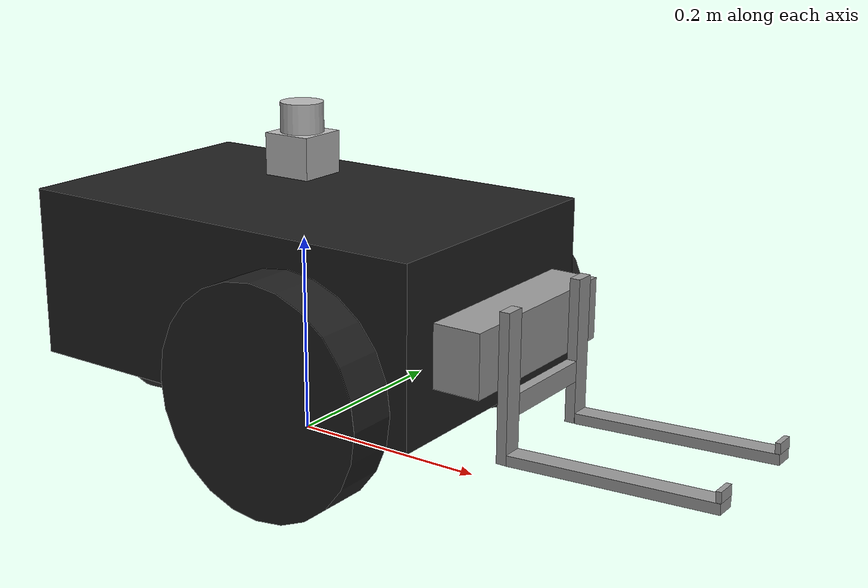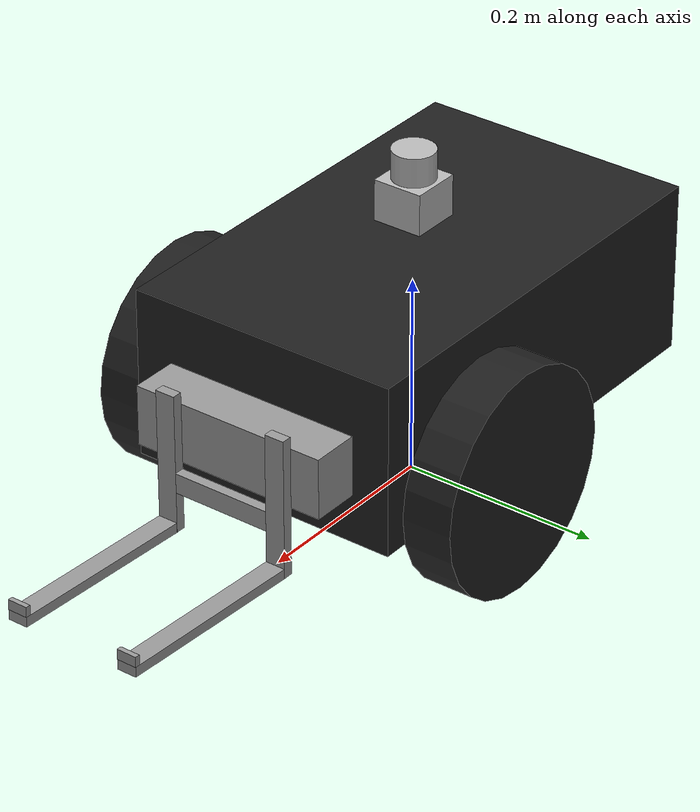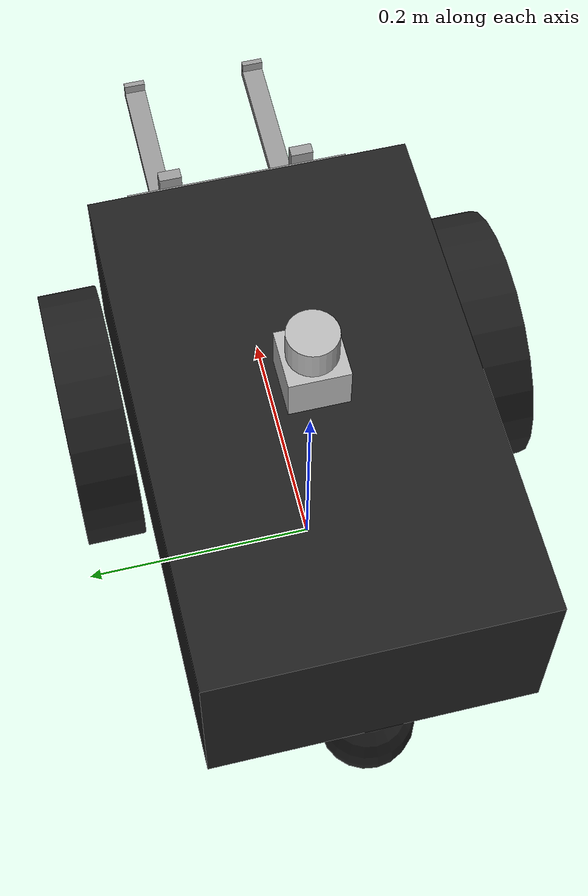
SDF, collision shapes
<?xml version="1.0" ?>
<sdf version="1.5">
  <model name="pioneer3dx">
    <link name="chassis">
      <pose>0 0 0.16 0 0 0</pose>
      <inertial>
        <mass>5.67</mass>
        <inertia>
          <ixx>0.07</ixx>
          <iyy>0.08</iyy>
          <izz>0.10</izz>
          <ixy>0</ixy>
          <ixz>0</ixz>
          <iyz>0</iyz>
        </inertia>
      </inertial>
      <collision name="collision">
        <geometry>
          <box>
            <size>0.445 0.277 0.17</size>
          </box>
        </geometry>
      </collision>
      <collision name="castor_collision">
        <pose>-0.200 0 -0.12 0 0 0</pose>
        <geometry>
          <sphere>
            <radius>0.04</radius>
          </sphere>
        </geometry>
        <surface>
          <friction>
            <ode>
              <mu>0</mu>
              <mu2>0</mu2>
              <slip1>1.0</slip1>
              <slip2>1.0</slip2>
            </ode>
          </friction>
        </surface>
      </collision>
      <visual name="visual">
        <pose>0 0 0.04 0 0 0</pose>
        <geometry>
          <mesh>
            <uri>model://pioneer3dx_description/models/robot/meshes/chassis.dae</uri>
          </mesh>
        </geometry>
      </visual>
      <visual name="castor_visual">
        <pose>-0.200 0 -0.12 0 0 0</pose>
        <geometry>
          <sphere>
            <radius>0.04</radius>
          </sphere>
        </geometry>
        <material>
          <script>
            <uri>file://media/materials/scripts/gazebo.material</uri>
            <name>Gazebo/FlatBlack</name>
          </script>
        </material>
      </visual>
    </link>
    <link name="right_wheel">
      <pose>0.1 -.17 0.11 0 1.5707 1.5707</pose>
      <inertial>
        <mass>1.5</mass>
        <inertia>
          <ixx>0.0051</ixx>
          <iyy>0.0051</iyy>
          <izz>0.0090</izz>
          <ixy>0</ixy>
          <ixz>0</ixz>
          <iyz>0</iyz>
        </inertia>
      </inertial>
      <collision name="collision">
        <geometry>
          <cylinder>
            <radius>0.11</radius>
            <length>0.05</length>
          </cylinder>
        </geometry>
        <surface>
          <friction>
            <ode>
              <mu>100000.0</mu>
              <mu2>100000.0</mu2>
              <slip1>0.0</slip1>
              <slip2>0.0</slip2>
            </ode>
          </friction>
        </surface>
      </collision>
      <visual name="visual">
        <geometry>
          <cylinder>
            <radius>0.11</radius>
            <length>0.05</length>
          </cylinder>
        </geometry>
        <material>
          <script>
            <uri>file://media/materials/scripts/gazebo.material</uri>
            <name>Gazebo/FlatBlack</name>
          </script>
        </material>
      </visual>
    </link>
    <link name="left_wheel">
      <pose>0.1 .17 0.11 0 1.5707 1.5707</pose>
      <inertial>
        <mass>1.5</mass>
        <inertia>
          <ixx>0.0051</ixx>
          <iyy>0.0051</iyy>
          <izz>0.0090</izz>
          <ixy>0</ixy>
          <ixz>0</ixz>
          <iyz>0</iyz>
        </inertia>
      </inertial>
      <collision name="collision">
        <geometry>
          <cylinder>
            <radius>0.11</radius>
            <length>0.05</length>
          </cylinder>
        </geometry>
        <surface>
          <friction>
            <ode>
              <mu>100000.0</mu>
              <mu2>100000.0</mu2>
              <slip1>0.0</slip1>
              <slip2>0.0</slip2>
            </ode>
          </friction>
        </surface>
      </collision>
      <visual name="visual">
        <geometry>
          <cylinder>
            <radius>0.11</radius>
            <length>0.05</length>
          </cylinder>
        </geometry>
        <material>
          <script>
            <uri>file://media/materials/scripts/gazebo.material</uri>
            <name>Gazebo/FlatBlack</name>
          </script>
        </material>
      </visual>
    </link>
    <joint type="revolute" name="left_wheel_hinge">
      <pose>0 0 -0.03 0 0 0</pose>
      <child>left_wheel</child>
      <parent>chassis</parent>
      <axis>
        <xyz>0 1 0</xyz>
        <use_parent_model_frame>true</use_parent_model_frame>
      </axis>
    </joint>
    <joint type="revolute" name="right_wheel_hinge">
      <pose>0 0 0.03 0 0 0</pose>
      <child>right_wheel</child>
      <parent>chassis</parent>
      <axis>
        <xyz>0 1 0</xyz>
        <use_parent_model_frame>true</use_parent_model_frame>
      </axis>
    </joint>

    <!-- Add forklift -->
    <include>
       <uri>model://pioneer3dx_description/models/forklift</uri>
       <name>forklift</name>
       <pose>0.0 0.0 0.03 0 0 0</pose>
       <static>false</static>
    </include>
    <joint name="chassis_forklift_joint" type="fixed" >
      <pose frame="chassis">0.21 0.0 0.03 0 0 0</pose>
      <child>forklift::base_link</child>
      <parent>chassis</parent>
    </joint>

    <!-- Add laser -->
    <include>
       <uri>model://pioneer3dx_description/models/UTM_30LX</uri>
       <name>laser</name>
       <pose>0.0 0.0 0.30 0 0 0</pose>
       <static>false</static>
    </include>
    <joint name="chassis_laser_joint" type="fixed" >
      <pose frame="chassis">0.0 0.0 0.30 0 0 0</pose>
      <child>laser::link</child>
      <parent>chassis</parent>
    </joint>

    <plugin name='differential_drive_controller' filename='libgazebo_ros_diff_drive.so'>
      <legacyMode>false</legacyMode>
      <rosDebugLevel>Debug</rosDebugLevel>
      <publishWheelTF>false</publishWheelTF>
      <publishTf>1</publishTf>
      <publishWheelJointState>true</publishWheelJointState>
      <alwaysOn>true</alwaysOn>
      <updateRate>100</updateRate>
      <leftJoint>right_wheel_hinge</leftJoint> <!-- Default gazebo model as the wheels switched -->
      <rightJoint>left_wheel_hinge</rightJoint>
      <wheelSeparation>0.34</wheelSeparation> <!-- This values could be calibrated experimentally -->
      <wheelDiameter>0.22</wheelDiameter>
      <wheelAcceleration>1.8</wheelAcceleration>
      <wheelTorque>5</wheelTorque>
      <odometrySource>world</odometrySource> <!-- Used world (no error) or encoder -->
      <commandTopic>cmd_vel</commandTopic>
      <odometryTopic>odom</odometryTopic>
      <odometryFrame>odom</odometryFrame>
      <robotBaseFrame>chassis</robotBaseFrame>
    </plugin>
    <plugin name="ground_truth" filename="libgazebo_ros_p3d.so">
      <updateRate>50.0</updateRate>
      <bodyName>chassis</bodyName>
      <topicName>/p3dx/base_pose_ground_truth</topicName>
      <frameName>map</frameName>
    </plugin>
  </model>
</sdf>

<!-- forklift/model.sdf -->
<sdf version="1.5">
  <model name="forklift">
    <pose>0 0 0 0 0 0</pose>
    <static>false</static>
    <!-- Base/Support link -->
    <link name="base_link">
      <inertial>
        <pose>0.237624 0 0.122112 0 0 0</pose>
        <mass>0.1</mass>
        <inertia>
          <ixx>0.00101506</ixx>
          <ixy>0</ixy>
          <ixz>-2.93069e-05</ixz>
          <iyy>0.00107209</iyy>
          <iyz>0</iyz>
          <izz>0.00105703</izz>
        </inertia>
      </inertial>
      <collision name="base_link_collision">
        <pose>0.24 0 0.123333 0 0 0</pose>
        <geometry>
          <box>
            <size>0.06 0.2 0.06</size>
          </box>
        </geometry>
      </collision>
      <visual name="base_link_visual">
        <pose>0.24 0 0.123333 0 0 0</pose>
        <geometry>
          <box>
            <size>0.06 0.2 0.06</size>
          </box>
        </geometry>
        <material>
          <script>
            <uri>file://media/materials/scripts/gazebo.material</uri>
            <name>Gazebo/Grey</name>
          </script>
        </material>
      </visual>
      <gravity>1</gravity>
      <velocity_decay/>
    </link>

    <!-- Fingers link -->
    <link name='fingers_link'>
      <pose>0.275 0 0.076667 0 0 0</pose>
      <inertial>
        <pose>0.087857 0 -0.014286 0 0 0</pose>
        <mass>0.7</mass>
        <inertia>
          <ixx>0.00957381</ixx>
          <ixy>0</ixy>
          <ixz>0.00107643</ixz>
          <iyy>0.0124168</iyy>
          <iyz>0</iyz>
          <izz>0.014163</izz>
        </inertia>
      </inertial>

      <!-- Base -->
      <collision name='fingers_base_collision'>
        <pose>0 0 0 0 0 0</pose>
        <geometry>
          <box>
            <size>0.01 0.1 0.02</size>
          </box>
        </geometry>
      </collision>
      <visual name='fingers_base_visual'>
        <pose>0 0 0 0 0 0</pose>
        <geometry>
          <box>
            <size>0.01 0.12 0.02</size>
          </box>
        </geometry>
        <material>
          <script>
            <uri>file://media/materials/scripts/gazebo.material</uri>
            <name>Gazebo/Grey</name>
          </script>
        </material>
      </visual>

      <!-- Left horizontal finger -->
      <collision name='finger_left_horizontal_collision'>
        <pose>0.105 -0.06 -0.041667 0 1.5208 0</pose>
        <geometry>
          <box>
            <size>0.01 0.02 0.2</size>
          </box>
        </geometry>
      </collision>
      <visual name='finger_left_horizontal_visual'>
        <pose>0.105 -0.06 -0.041667 0 1.5208 0</pose>
        <geometry>
          <box>
            <size>0.01 0.02 0.2</size>
          </box>
        </geometry>
        <material>
          <script>
            <uri>file://media/materials/scripts/gazebo.material</uri>
            <name>Gazebo/Grey</name>
          </script>
        </material>
      </visual>

      <!-- Left finger, horizontal end -->
      <collision name='finger_left_horizontal_end_collision'>
        <pose>0.2025 -0.06 -0.026667 0 1.5208 0</pose>
        <geometry>
          <box>
            <size>0.01 0.02 0.005</size>
          </box>
        </geometry>
      </collision>
      <visual name='finger_left_horizontal_end_visual'>
        <pose>0.2025 -0.06 -0.026667 0 1.5208 0</pose>
        <geometry>
          <box>
            <size>0.01 0.02 0.005</size>
          </box>
        </geometry>
        <material>
          <script>
            <uri>file://media/materials/scripts/gazebo.material</uri>
            <name>Gazebo/Grey</name>
          </script>
        </material>
      </visual>

      <!-- Right horizontal finger -->
      <collision name='finger_right_horizontal_collision'>
        <pose>0.105 0.06 -0.041667 0 1.5208 0</pose>
        <geometry>
          <box>
            <size>0.01 0.02 0.2</size>
          </box>
        </geometry>
      </collision>
      <visual name='finger_right_horizontal_visual'>
        <pose>0.105 0.06 -0.041667 0 1.5208 0</pose>
        <geometry>
          <box>
            <size>0.01 0.02 0.2</size>
          </box>
        </geometry>
        <material>
          <script>
            <uri>file://media/materials/scripts/gazebo.material</uri>
            <name>Gazebo/Grey</name>
          </script>
        </material>
      </visual>

      <!-- Right finger, horizontal end -->
      <collision name='finger_right_horizontal_end_collision'>
        <pose>0.2025 0.06 -0.026667 0 1.5208 0</pose>
        <geometry>
          <box>
            <size>0.01 0.02 0.005</size>
          </box>
        </geometry>
      </collision>
      <visual name='finger_right_horizontal_end_visual'>
        <pose>0.2025 0.06 -0.026667 0 1.5208 0</pose>
        <geometry>
          <box>
            <size>0.01 0.02 0.005</size>
          </box>
        </geometry>
        <material>
          <script>
            <uri>file://media/materials/scripts/gazebo.material</uri>
            <name>Gazebo/Grey</name>
          </script>
        </material>
      </visual>

      <!-- Left finger, vertical support -->
      <collision name='finger_left_vertical_collision'>
        <pose>0 -0.06 0.018333 0 0 0</pose>
        <geometry>
          <box>
            <size>0.01 0.02 0.14</size>
          </box>
        </geometry>
      </collision>
      <visual name='finger_left_vertical_visual'>
        <pose>0 -0.06 0.018333 0 0 0</pose>
        <geometry>
          <box>
            <size>0.01 0.02 0.14</size>
          </box>
        </geometry>
        <material>
          <script>
            <uri>file://media/materials/scripts/gazebo.material</uri>
            <name>Gazebo/Grey</name>
          </script>
        </material>
      </visual>

      <!-- Right finger, vertical support -->
     <collision name='finger_right_vertical_collision'>
        <pose>0 0.06 0.018333 0 0 0</pose>
        <geometry>
          <box>
            <size>0.01 0.02 0.14</size>
          </box>
        </geometry>
      </collision>
      <visual name='finger_right_vertical_visual'>
        <pose>0 0.06 0.018333 0 0 0</pose>
        <geometry>
          <box>
            <size>0.01 0.02 0.14</size>
          </box>
        </geometry>
        <material>
          <script>
            <uri>file://media/materials/scripts/gazebo.material</uri>
            <name>Gazebo/Grey</name>
          </script>
        </material>
      </visual>
      <velocity_decay/>
      <gravity>1</gravity>
    </link>

    <!-- Prismatic joint -->
    <joint name='forklift_joint' type='prismatic'>
      <child>fingers_link</child>
      <parent>base_link</parent>
      <axis>
        <xyz>0 0 1</xyz>
        <limit>
          <lower>0</lower>
          <upper>10.08</upper>
          <effort>1000</effort>
          <velocity>0.2</velocity>
        </limit>
        <dynamics>
          <damping>10</damping>
          <friction>0</friction>
          <spring_reference>0</spring_reference>
          <spring_stiffness>0</spring_stiffness>
        </dynamics>
        <use_parent_model_frame>1</use_parent_model_frame>
      </axis>
    </joint>

    <!-- Plugin controller -->
  </model>
</sdf>

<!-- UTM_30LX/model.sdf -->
<sdf version="1.5">
  <model name="UTM_30LX">
    <pose>0 0 0.035 0 0 0</pose>
    <link name="link">
      <inertial>
        <mass>0.1</mass>
      </inertial>
      <visual name="visual">
        <geometry>
          <mesh>
            <uri>model://pioneer3dx_description/models/UTM_30LX/meshes/hokuyo.dae</uri>
          </mesh>
        </geometry>
      </visual>
      <collision name="collision-base">
        <pose>0 0 -0.0145 0 0 0</pose>
        <geometry>
          <box>
            <size>0.05 0.05 0.041</size>
          </box>
        </geometry>
      </collision>
      <collision name="collision-top">
        <pose>0 0 0.0205 0 0 0</pose>
        <geometry>
          <cylinder>
            <radius>0.021</radius>
            <length>0.029</length>
          </cylinder>
        </geometry>
      </collision>
      <sensor name="laser" type="ray">
        <pose>0.01 0 0.0175 0 -0 0</pose>
        <ray>
          <scan>
            <horizontal>
              <samples>720</samples>
              <resolution>1</resolution>
              <min_angle>-1.570796</min_angle>
              <max_angle>1.570796</max_angle>
            </horizontal>
          </scan>
          <range>
            <min>0.10</min>
            <max>30</max>
            <resolution>0.01</resolution>
          </range>
        </ray>
        <always_on>1</always_on>
        <update_rate>30</update_rate>
        <visualize>false</visualize>
        <plugin name="gazebo_ros_hokuyo_controller" filename="libgazebo_ros_laser.so">
          <topicName>robot/laser/scan</topicName>
  	      <frameName>laser_link</frameName>
        </plugin>
      </sensor>
    </link>
  </model>
</sdf>
